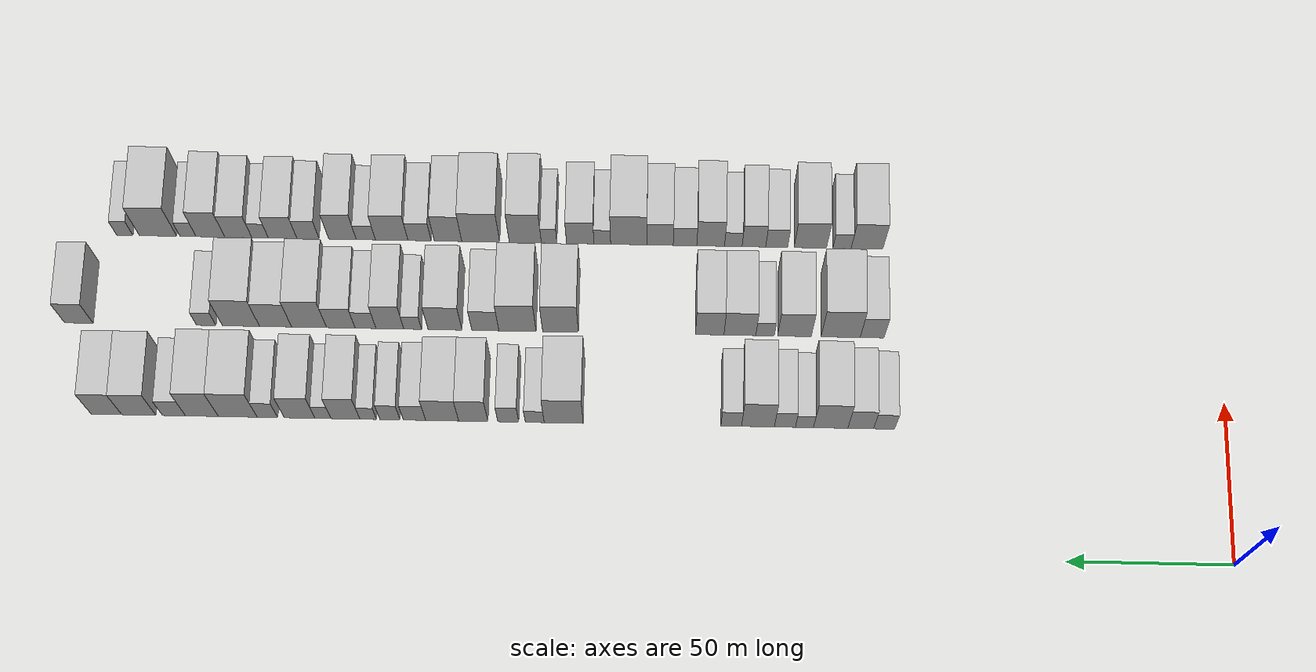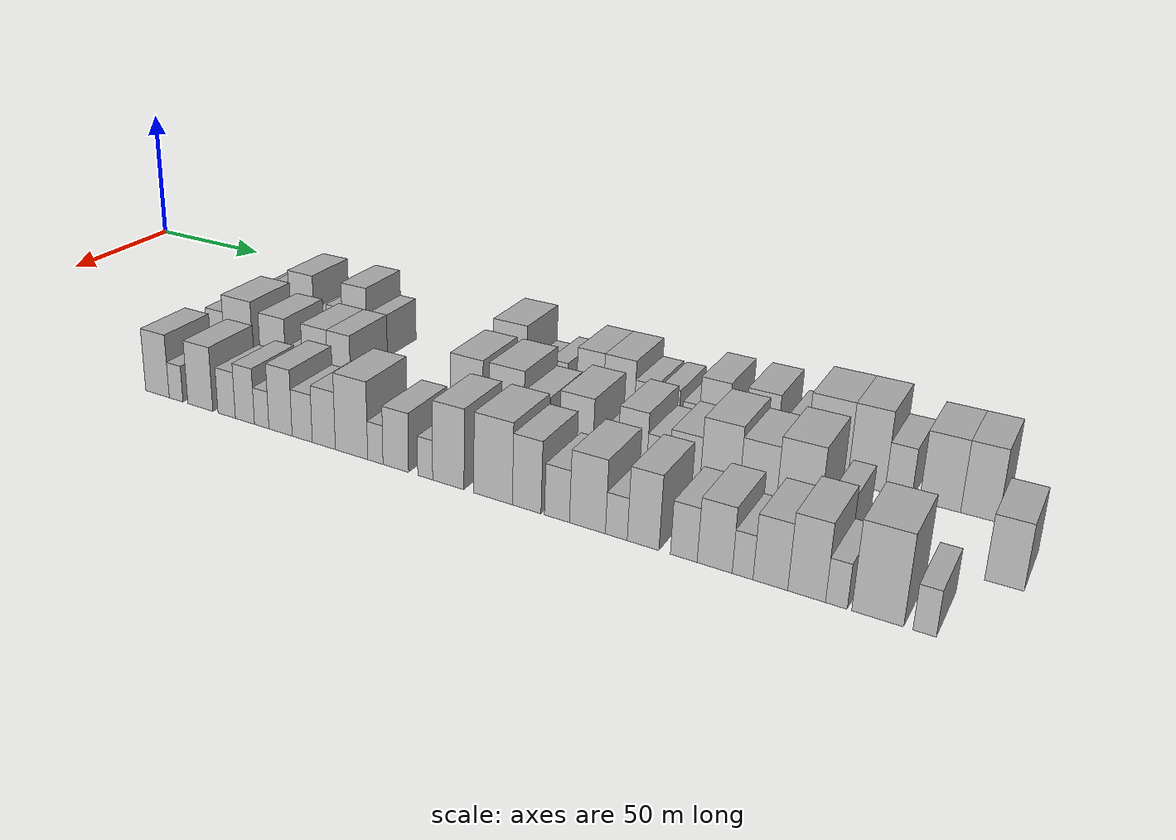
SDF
<sdf version="1.6">
 <world name="default">
  <model name="building_43">
   <static>1</static>
   <pose>50.0000 103.7568 0 0.000000 0.000000 0.000000</pose>
   <link name="link">
    <pose>0 0 7.50 0 0 0</pose>
    <collision name="collision"><geometry><box><size>20.0000 6.3906 15.0000</size></box></geometry></collision>
    <visual name="visual">
     <cast_shadows>0</cast_shadows>
     <geometry><box><size>20.0000 6.3906 15.0000</size></box></geometry>
     <material>
      <script>
       <uri>model://HANNAS_wall/materials/scripts</uri>
       <uri>model://HANNAS_wall/materials/textures</uri>
       <name>vrc/HANNAS_wall</name>
      </script>
     </material>
    </visual>
   </link>
  </model>
  <model name="building_44">
   <static>1</static>
   <pose>50.0000 110.8456 0 0.000000 0.000000 0.000000</pose>
   <link name="link">
    <pose>0 0 9.00 0 0 0</pose>
    <collision name="collision"><geometry><box><size>20.0000 7.7872 18.0000</size></box></geometry></collision>
    <visual name="visual">
     <cast_shadows>0</cast_shadows>
     <geometry><box><size>20.0000 7.7872 18.0000</size></box></geometry>
     <material>
      <script>
       <uri>model://HANNAS_wall/materials/scripts</uri>
       <uri>model://HANNAS_wall/materials/textures</uri>
       <name>vrc/HANNAS_wall</name>
      </script>
     </material>
    </visual>
   </link>
  </model>
  <model name="building_45">
   <static>1</static>
   <pose>50.0000 119.9501 0 0.000000 0.000000 0.000000</pose>
   <link name="link">
    <pose>0 0 12.00 0 0 0</pose>
    <collision name="collision"><geometry><box><size>20.0000 10.4216 24.0000</size></box></geometry></collision>
    <visual name="visual">
     <cast_shadows>0</cast_shadows>
     <geometry><box><size>20.0000 10.4216 24.0000</size></box></geometry>
     <material>
      <script>
       <uri>model://HANNAS_wall/materials/scripts</uri>
       <uri>model://HANNAS_wall/materials/textures</uri>
       <name>vrc/HANNAS_wall</name>
      </script>
     </material>
    </visual>
   </link>
  </model>
  <model name="building_46">
   <static>1</static>
   <pose>50.0000 127.8922 0 0.000000 0.000000 0.000000</pose>
   <link name="link">
    <pose>0 0 6.00 0 0 0</pose>
    <collision name="collision"><geometry><box><size>20.0000 5.4625 12.0000</size></box></geometry></collision>
    <visual name="visual">
     <cast_shadows>0</cast_shadows>
     <geometry><box><size>20.0000 5.4625 12.0000</size></box></geometry>
     <material>
      <script>
       <uri>model://HANNAS_wall/materials/scripts</uri>
       <uri>model://HANNAS_wall/materials/textures</uri>
       <name>vrc/HANNAS_wall</name>
      </script>
     </material>
    </visual>
   </link>
  </model>
  <model name="building_47">
   <static>1</static>
   <pose>50.0000 133.8123 0 0.000000 0.000000 0.000000</pose>
   <link name="link">
    <pose>0 0 7.50 0 0 0</pose>
    <collision name="collision"><geometry><box><size>20.0000 6.3777 15.0000</size></box></geometry></collision>
    <visual name="visual">
     <cast_shadows>0</cast_shadows>
     <geometry><box><size>20.0000 6.3777 15.0000</size></box></geometry>
     <material>
      <script>
       <uri>model://HANNAS_wall/materials/scripts</uri>
       <uri>model://HANNAS_wall/materials/textures</uri>
       <name>vrc/HANNAS_wall</name>
      </script>
     </material>
    </visual>
   </link>
  </model>
  <model name="building_48">
   <static>1</static>
   <pose>50.0000 141.9819 0 0.000000 0.000000 0.000000</pose>
   <link name="link">
    <pose>0 0 12.00 0 0 0</pose>
    <collision name="collision"><geometry><box><size>20.0000 9.9615 24.0000</size></box></geometry></collision>
    <visual name="visual">
     <cast_shadows>0</cast_shadows>
     <geometry><box><size>20.0000 9.9615 24.0000</size></box></geometry>
     <material>
      <script>
       <uri>model://HANNAS_wall/materials/scripts</uri>
       <uri>model://HANNAS_wall/materials/textures</uri>
       <name>vrc/HANNAS_wall</name>
      </script>
     </material>
    </visual>
   </link>
  </model>
  <model name="building_49">
   <static>1</static>
   <pose>50.0000 150.0803 0 0.000000 0.000000 0.000000</pose>
   <link name="link">
    <pose>0 0 7.50 0 0 0</pose>
    <collision name="collision"><geometry><box><size>20.0000 6.2354 15.0000</size></box></geometry></collision>
    <visual name="visual">
     <cast_shadows>0</cast_shadows>
     <geometry><box><size>20.0000 6.2354 15.0000</size></box></geometry>
     <material>
      <script>
       <uri>model://HANNAS_wall/materials/scripts</uri>
       <uri>model://HANNAS_wall/materials/textures</uri>
       <name>vrc/HANNAS_wall</name>
      </script>
     </material>
    </visual>
   </link>
  </model>
  <model name="building_50">
   <static>1</static>
   <pose>50.0000 200.9176 0 0.000000 0.000000 0.000000</pose>
   <link name="link">
    <pose>0 0 12.00 0 0 0</pose>
    <collision name="collision"><geometry><box><size>20.0000 11.8130 24.0000</size></box></geometry></collision>
    <visual name="visual">
     <cast_shadows>0</cast_shadows>
     <geometry><box><size>20.0000 11.8130 24.0000</size></box></geometry>
     <material>
      <script>
       <uri>model://HANNAS_wall/materials/scripts</uri>
       <uri>model://HANNAS_wall/materials/textures</uri>
       <name>vrc/HANNAS_wall</name>
      </script>
     </material>
    </visual>
   </link>
  </model>
  <model name="building_51">
   <static>1</static>
   <pose>50.0000 209.6882 0 0.000000 0.000000 0.000000</pose>
   <link name="link">
    <pose>0 0 6.00 0 0 0</pose>
    <collision name="collision"><geometry><box><size>20.0000 5.7282 12.0000</size></box></geometry></collision>
    <visual name="visual">
     <cast_shadows>0</cast_shadows>
     <geometry><box><size>20.0000 5.7282 12.0000</size></box></geometry>
     <material>
      <script>
       <uri>model://HANNAS_wall/materials/scripts</uri>
       <uri>model://HANNAS_wall/materials/textures</uri>
       <name>vrc/HANNAS_wall</name>
      </script>
     </material>
    </visual>
   </link>
  </model>
  <model name="building_52">
   <static>1</static>
   <pose>50.0000 217.7186 0 0.000000 0.000000 0.000000</pose>
   <link name="link">
    <pose>0 0 7.50 0 0 0</pose>
    <collision name="collision"><geometry><box><size>20.0000 6.3327 15.0000</size></box></geometry></collision>
    <visual name="visual">
     <cast_shadows>0</cast_shadows>
     <geometry><box><size>20.0000 6.3327 15.0000</size></box></geometry>
     <material>
      <script>
       <uri>model://HANNAS_wall/materials/scripts</uri>
       <uri>model://HANNAS_wall/materials/textures</uri>
       <name>vrc/HANNAS_wall</name>
      </script>
     </material>
    </visual>
   </link>
  </model>
  <model name="building_53">
   <static>1</static>
   <pose>50.0000 228.3293 0 0.000000 0.000000 0.000000</pose>
   <link name="link">
    <pose>0 0 10.50 0 0 0</pose>
    <collision name="collision"><geometry><box><size>20.0000 8.8886 21.0000</size></box></geometry></collision>
    <visual name="visual">
     <cast_shadows>0</cast_shadows>
     <geometry><box><size>20.0000 8.8886 21.0000</size></box></geometry>
     <material>
      <script>
       <uri>model://HANNAS_wall/materials/scripts</uri>
       <uri>model://HANNAS_wall/materials/textures</uri>
       <name>vrc/HANNAS_wall</name>
      </script>
     </material>
    </visual>
   </link>
  </model>
  <model name="building_54">
   <static>1</static>
   <pose>50.0000 237.7962 0 0.000000 0.000000 0.000000</pose>
   <link name="link">
    <pose>0 0 10.50 0 0 0</pose>
    <collision name="collision"><geometry><box><size>20.0000 10.0452 21.0000</size></box></geometry></collision>
    <visual name="visual">
     <cast_shadows>0</cast_shadows>
     <geometry><box><size>20.0000 10.0452 21.0000</size></box></geometry>
     <material>
      <script>
       <uri>model://HANNAS_wall/materials/scripts</uri>
       <uri>model://HANNAS_wall/materials/textures</uri>
       <name>vrc/HANNAS_wall</name>
      </script>
     </material>
    </visual>
   </link>
  </model>
  <model name="building_55">
   <static>1</static>
   <pose>50.0000 246.1873 0 0.000000 0.000000 0.000000</pose>
   <link name="link">
    <pose>0 0 7.50 0 0 0</pose>
    <collision name="collision"><geometry><box><size>20.0000 6.7370 15.0000</size></box></geometry></collision>
    <visual name="visual">
     <cast_shadows>0</cast_shadows>
     <geometry><box><size>20.0000 6.7370 15.0000</size></box></geometry>
     <material>
      <script>
       <uri>model://HANNAS_wall/materials/scripts</uri>
       <uri>model://HANNAS_wall/materials/textures</uri>
       <name>vrc/HANNAS_wall</name>
      </script>
     </material>
    </visual>
   </link>
  </model>
  <model name="building_56">
   <static>1</static>
   <pose>50.0000 253.6301 0 0.000000 0.000000 0.000000</pose>
   <link name="link">
    <pose>0 0 7.50 0 0 0</pose>
    <collision name="collision"><geometry><box><size>20.0000 6.1486 15.0000</size></box></geometry></collision>
    <visual name="visual">
     <cast_shadows>0</cast_shadows>
     <geometry><box><size>20.0000 6.1486 15.0000</size></box></geometry>
     <material>
      <script>
       <uri>model://HANNAS_wall/materials/scripts</uri>
       <uri>model://HANNAS_wall/materials/textures</uri>
       <name>vrc/HANNAS_wall</name>
      </script>
     </material>
    </visual>
   </link>
  </model>
  <model name="building_57">
   <static>1</static>
   <pose>50.0000 260.2373 0 0.000000 0.000000 0.000000</pose>
   <link name="link">
    <pose>0 0 6.00 0 0 0</pose>
    <collision name="collision"><geometry><box><size>20.0000 5.0658 12.0000</size></box></geometry></collision>
    <visual name="visual">
     <cast_shadows>0</cast_shadows>
     <geometry><box><size>20.0000 5.0658 12.0000</size></box></geometry>
     <material>
      <script>
       <uri>model://HANNAS_wall/materials/scripts</uri>
       <uri>model://HANNAS_wall/materials/textures</uri>
       <name>vrc/HANNAS_wall</name>
      </script>
     </material>
    </visual>
   </link>
  </model>
  <model name="building_58">
   <static>1</static>
   <pose>50.0000 267.1651 0 0.000000 0.000000 0.000000</pose>
   <link name="link">
    <pose>0 0 10.50 0 0 0</pose>
    <collision name="collision"><geometry><box><size>20.0000 8.7898 21.0000</size></box></geometry></collision>
    <visual name="visual">
     <cast_shadows>0</cast_shadows>
     <geometry><box><size>20.0000 8.7898 21.0000</size></box></geometry>
     <material>
      <script>
       <uri>model://HANNAS_wall/materials/scripts</uri>
       <uri>model://HANNAS_wall/materials/textures</uri>
       <name>vrc/HANNAS_wall</name>
      </script>
     </material>
    </visual>
   </link>
  </model>
  <model name="building_59">
   <static>1</static>
   <pose>50.0000 273.9715 0 0.000000 0.000000 0.000000</pose>
   <link name="link">
    <pose>0 0 6.00 0 0 0</pose>
    <collision name="collision"><geometry><box><size>20.0000 4.8229 12.0000</size></box></geometry></collision>
    <visual name="visual">
     <cast_shadows>0</cast_shadows>
     <geometry><box><size>20.0000 4.8229 12.0000</size></box></geometry>
     <material>
      <script>
       <uri>model://HANNAS_wall/materials/scripts</uri>
       <uri>model://HANNAS_wall/materials/textures</uri>
       <name>vrc/HANNAS_wall</name>
      </script>
     </material>
    </visual>
   </link>
  </model>
  <model name="building_60">
   <static>1</static>
   <pose>50.0000 281.0614 0 0.000000 0.000000 0.000000</pose>
   <link name="link">
    <pose>0 0 10.50 0 0 0</pose>
    <collision name="collision"><geometry><box><size>20.0000 9.3570 21.0000</size></box></geometry></collision>
    <visual name="visual">
     <cast_shadows>0</cast_shadows>
     <geometry><box><size>20.0000 9.3570 21.0000</size></box></geometry>
     <material>
      <script>
       <uri>model://HANNAS_wall/materials/scripts</uri>
       <uri>model://HANNAS_wall/materials/textures</uri>
       <name>vrc/HANNAS_wall</name>
      </script>
     </material>
    </visual>
   </link>
  </model>
  <model name="building_61">
   <static>1</static>
   <pose>50.0000 290.8681 0 0.000000 0.000000 0.000000</pose>
   <link name="link">
    <pose>0 0 7.50 0 0 0</pose>
    <collision name="collision"><geometry><box><size>20.0000 6.2563 15.0000</size></box></geometry></collision>
    <visual name="visual">
     <cast_shadows>0</cast_shadows>
     <geometry><box><size>20.0000 6.2563 15.0000</size></box></geometry>
     <material>
      <script>
       <uri>model://HANNAS_wall/materials/scripts</uri>
       <uri>model://HANNAS_wall/materials/textures</uri>
       <name>vrc/HANNAS_wall</name>
      </script>
     </material>
    </visual>
   </link>
  </model>
  <model name="building_62">
   <static>1</static>
   <pose>50.0000 299.8954 0 0.000000 0.000000 0.000000</pose>
   <link name="link">
    <pose>0 0 12.00 0 0 0</pose>
    <collision name="collision"><geometry><box><size>20.0000 11.7983 24.0000</size></box></geometry></collision>
    <visual name="visual">
     <cast_shadows>0</cast_shadows>
     <geometry><box><size>20.0000 11.7983 24.0000</size></box></geometry>
     <material>
      <script>
       <uri>model://HANNAS_wall/materials/scripts</uri>
       <uri>model://HANNAS_wall/materials/textures</uri>
       <name>vrc/HANNAS_wall</name>
      </script>
     </material>
    </visual>
   </link>
  </model>
  <model name="building_63">
   <static>1</static>
   <pose>50.0000 310.7911 0 0.000000 0.000000 0.000000</pose>
   <link name="link">
    <pose>0 0 12.00 0 0 0</pose>
    <collision name="collision"><geometry><box><size>20.0000 9.9930 24.0000</size></box></geometry></collision>
    <visual name="visual">
     <cast_shadows>0</cast_shadows>
     <geometry><box><size>20.0000 9.9930 24.0000</size></box></geometry>
     <material>
      <script>
       <uri>model://HANNAS_wall/materials/scripts</uri>
       <uri>model://HANNAS_wall/materials/textures</uri>
       <name>vrc/HANNAS_wall</name>
      </script>
     </material>
    </visual>
   </link>
  </model>
  <model name="building_64">
   <static>1</static>
   <pose>50.0000 319.2852 0 0.000000 0.000000 0.000000</pose>
   <link name="link">
    <pose>0 0 7.50 0 0 0</pose>
    <collision name="collision"><geometry><box><size>20.0000 6.9953 15.0000</size></box></geometry></collision>
    <visual name="visual">
     <cast_shadows>0</cast_shadows>
     <geometry><box><size>20.0000 6.9953 15.0000</size></box></geometry>
     <material>
      <script>
       <uri>model://HANNAS_wall/materials/scripts</uri>
       <uri>model://HANNAS_wall/materials/textures</uri>
       <name>vrc/HANNAS_wall</name>
      </script>
     </material>
    </visual>
   </link>
  </model>
  <model name="building_65">
   <static>1</static>
   <pose>50.0000 329.9708 0 0.000000 0.000000 0.000000</pose>
   <link name="link">
    <pose>0 0 10.50 0 0 0</pose>
    <collision name="collision"><geometry><box><size>20.0000 10.3757 21.0000</size></box></geometry></collision>
    <visual name="visual">
     <cast_shadows>0</cast_shadows>
     <geometry><box><size>20.0000 10.3757 21.0000</size></box></geometry>
     <material>
      <script>
       <uri>model://HANNAS_wall/materials/scripts</uri>
       <uri>model://HANNAS_wall/materials/textures</uri>
       <name>vrc/HANNAS_wall</name>
      </script>
     </material>
    </visual>
   </link>
  </model>
  <model name="building_66">
   <static>1</static>
   <pose>50.0000 339.8101 0 0.000000 0.000000 0.000000</pose>
   <link name="link">
    <pose>0 0 10.50 0 0 0</pose>
    <collision name="collision"><geometry><box><size>20.0000 9.3029 21.0000</size></box></geometry></collision>
    <visual name="visual">
     <cast_shadows>0</cast_shadows>
     <geometry><box><size>20.0000 9.3029 21.0000</size></box></geometry>
     <material>
      <script>
       <uri>model://HANNAS_wall/materials/scripts</uri>
       <uri>model://HANNAS_wall/materials/textures</uri>
       <name>vrc/HANNAS_wall</name>
      </script>
     </material>
    </visual>
   </link>
  </model>
  <model name="building_116">
   <static>1</static>
   <pose>79.0000 107.0657 0 0.000000 0.000000 0.000000</pose>
   <link name="link">
    <pose>0 0 9.00 0 0 0</pose>
    <collision name="collision"><geometry><box><size>20.0000 7.3042 18.0000</size></box></geometry></collision>
    <visual name="visual">
     <cast_shadows>0</cast_shadows>
     <geometry><box><size>20.0000 7.3042 18.0000</size></box></geometry>
     <material>
      <script>
       <uri>model://HANNAS_wall/materials/scripts</uri>
       <uri>model://HANNAS_wall/materials/textures</uri>
       <name>vrc/HANNAS_wall</name>
      </script>
     </material>
    </visual>
   </link>
  </model>
  <model name="building_117">
   <static>1</static>
   <pose>79.0000 116.7170 0 0.000000 0.000000 0.000000</pose>
   <link name="link">
    <pose>0 0 12.00 0 0 0</pose>
    <collision name="collision"><geometry><box><size>20.0000 11.9986 24.0000</size></box></geometry></collision>
    <visual name="visual">
     <cast_shadows>0</cast_shadows>
     <geometry><box><size>20.0000 11.9986 24.0000</size></box></geometry>
     <material>
      <script>
       <uri>model://HANNAS_wall/materials/scripts</uri>
       <uri>model://HANNAS_wall/materials/textures</uri>
       <name>vrc/HANNAS_wall</name>
      </script>
     </material>
    </visual>
   </link>
  </model>
  <model name="building_118">
   <static>1</static>
   <pose>79.0000 130.8873 0 0.000000 0.000000 0.000000</pose>
   <link name="link">
    <pose>0 0 10.50 0 0 0</pose>
    <collision name="collision"><geometry><box><size>20.0000 10.3419 21.0000</size></box></geometry></collision>
    <visual name="visual">
     <cast_shadows>0</cast_shadows>
     <geometry><box><size>20.0000 10.3419 21.0000</size></box></geometry>
     <material>
      <script>
       <uri>model://HANNAS_wall/materials/scripts</uri>
       <uri>model://HANNAS_wall/materials/textures</uri>
       <name>vrc/HANNAS_wall</name>
      </script>
     </material>
    </visual>
   </link>
  </model>
  <model name="building_119">
   <static>1</static>
   <pose>79.0000 139.8989 0 0.000000 0.000000 0.000000</pose>
   <link name="link">
    <pose>0 0 6.00 0 0 0</pose>
    <collision name="collision"><geometry><box><size>20.0000 5.6813 12.0000</size></box></geometry></collision>
    <visual name="visual">
     <cast_shadows>0</cast_shadows>
     <geometry><box><size>20.0000 5.6813 12.0000</size></box></geometry>
     <material>
      <script>
       <uri>model://HANNAS_wall/materials/scripts</uri>
       <uri>model://HANNAS_wall/materials/textures</uri>
       <name>vrc/HANNAS_wall</name>
      </script>
     </material>
    </visual>
   </link>
  </model>
  <model name="building_120">
   <static>1</static>
   <pose>79.0000 147.6278 0 0.000000 0.000000 0.000000</pose>
   <link name="link">
    <pose>0 0 10.50 0 0 0</pose>
    <collision name="collision"><geometry><box><size>20.0000 9.7765 21.0000</size></box></geometry></collision>
    <visual name="visual">
     <cast_shadows>0</cast_shadows>
     <geometry><box><size>20.0000 9.7765 21.0000</size></box></geometry>
     <material>
      <script>
       <uri>model://HANNAS_wall/materials/scripts</uri>
       <uri>model://HANNAS_wall/materials/textures</uri>
       <name>vrc/HANNAS_wall</name>
      </script>
     </material>
    </visual>
   </link>
  </model>
  <model name="building_121">
   <static>1</static>
   <pose>79.0000 156.9021 0 0.000000 0.000000 0.000000</pose>
   <link name="link">
    <pose>0 0 10.50 0 0 0</pose>
    <collision name="collision"><geometry><box><size>20.0000 8.7720 21.0000</size></box></geometry></collision>
    <visual name="visual">
     <cast_shadows>0</cast_shadows>
     <geometry><box><size>20.0000 8.7720 21.0000</size></box></geometry>
     <material>
      <script>
       <uri>model://HANNAS_wall/materials/scripts</uri>
       <uri>model://HANNAS_wall/materials/textures</uri>
       <name>vrc/HANNAS_wall</name>
      </script>
     </material>
    </visual>
   </link>
  </model>
  <model name="building_122">
   <static>1</static>
   <pose>79.0000 202.7490 0 0.000000 0.000000 0.000000</pose>
   <link name="link">
    <pose>0 0 12.00 0 0 0</pose>
    <collision name="collision"><geometry><box><size>20.0000 10.9740 24.0000</size></box></geometry></collision>
    <visual name="visual">
     <cast_shadows>0</cast_shadows>
     <geometry><box><size>20.0000 10.9740 24.0000</size></box></geometry>
     <material>
      <script>
       <uri>model://HANNAS_wall/materials/scripts</uri>
       <uri>model://HANNAS_wall/materials/textures</uri>
       <name>vrc/HANNAS_wall</name>
      </script>
     </material>
    </visual>
   </link>
  </model>
  <model name="building_123">
   <static>1</static>
   <pose>79.0000 215.9618 0 0.000000 0.000000 0.000000</pose>
   <link name="link">
    <pose>0 0 12.00 0 0 0</pose>
    <collision name="collision"><geometry><box><size>20.0000 11.4517 24.0000</size></box></geometry></collision>
    <visual name="visual">
     <cast_shadows>0</cast_shadows>
     <geometry><box><size>20.0000 11.4517 24.0000</size></box></geometry>
     <material>
      <script>
       <uri>model://HANNAS_wall/materials/scripts</uri>
       <uri>model://HANNAS_wall/materials/textures</uri>
       <name>vrc/HANNAS_wall</name>
      </script>
     </material>
    </visual>
   </link>
  </model>
  <model name="building_124">
   <static>1</static>
   <pose>79.0000 225.8504 0 0.000000 0.000000 0.000000</pose>
   <link name="link">
    <pose>0 0 9.00 0 0 0</pose>
    <collision name="collision"><geometry><box><size>20.0000 8.3255 18.0000</size></box></geometry></collision>
    <visual name="visual">
     <cast_shadows>0</cast_shadows>
     <geometry><box><size>20.0000 8.3255 18.0000</size></box></geometry>
     <material>
      <script>
       <uri>model://HANNAS_wall/materials/scripts</uri>
       <uri>model://HANNAS_wall/materials/textures</uri>
       <name>vrc/HANNAS_wall</name>
      </script>
     </material>
    </visual>
   </link>
  </model>
  <model name="building_125">
   <static>1</static>
   <pose>79.0000 238.2356 0 0.000000 0.000000 0.000000</pose>
   <link name="link">
    <pose>0 0 10.50 0 0 0</pose>
    <collision name="collision"><geometry><box><size>20.0000 10.4449 21.0000</size></box></geometry></collision>
    <visual name="visual">
     <cast_shadows>0</cast_shadows>
     <geometry><box><size>20.0000 10.4449 21.0000</size></box></geometry>
     <material>
      <script>
       <uri>model://HANNAS_wall/materials/scripts</uri>
       <uri>model://HANNAS_wall/materials/textures</uri>
       <name>vrc/HANNAS_wall</name>
      </script>
     </material>
    </visual>
   </link>
  </model>
  <model name="building_126">
   <static>1</static>
   <pose>79.0000 248.1817 0 0.000000 0.000000 0.000000</pose>
   <link name="link">
    <pose>0 0 6.00 0 0 0</pose>
    <collision name="collision"><geometry><box><size>20.0000 5.4472 12.0000</size></box></geometry></collision>
    <visual name="visual">
     <cast_shadows>0</cast_shadows>
     <geometry><box><size>20.0000 5.4472 12.0000</size></box></geometry>
     <material>
      <script>
       <uri>model://HANNAS_wall/materials/scripts</uri>
       <uri>model://HANNAS_wall/materials/textures</uri>
       <name>vrc/HANNAS_wall</name>
      </script>
     </material>
    </visual>
   </link>
  </model>
  <model name="building_127">
   <static>1</static>
   <pose>79.0000 255.1969 0 0.000000 0.000000 0.000000</pose>
   <link name="link">
    <pose>0 0 10.50 0 0 0</pose>
    <collision name="collision"><geometry><box><size>20.0000 8.5832 21.0000</size></box></geometry></collision>
    <visual name="visual">
     <cast_shadows>0</cast_shadows>
     <geometry><box><size>20.0000 8.5832 21.0000</size></box></geometry>
     <material>
      <script>
       <uri>model://HANNAS_wall/materials/scripts</uri>
       <uri>model://HANNAS_wall/materials/textures</uri>
       <name>vrc/HANNAS_wall</name>
      </script>
     </material>
    </visual>
   </link>
  </model>
  <model name="building_128">
   <static>1</static>
   <pose>79.0000 262.6918 0 0.000000 0.000000 0.000000</pose>
   <link name="link">
    <pose>0 0 7.50 0 0 0</pose>
    <collision name="collision"><geometry><box><size>20.0000 6.4067 15.0000</size></box></geometry></collision>
    <visual name="visual">
     <cast_shadows>0</cast_shadows>
     <geometry><box><size>20.0000 6.4067 15.0000</size></box></geometry>
     <material>
      <script>
       <uri>model://HANNAS_wall/materials/scripts</uri>
       <uri>model://HANNAS_wall/materials/textures</uri>
       <name>vrc/HANNAS_wall</name>
      </script>
     </material>
    </visual>
   </link>
  </model>
  <model name="building_129">
   <static>1</static>
   <pose>79.0000 270.2952 0 0.000000 0.000000 0.000000</pose>
   <link name="link">
    <pose>0 0 9.00 0 0 0</pose>
    <collision name="collision"><geometry><box><size>20.0000 8.8000 18.0000</size></box></geometry></collision>
    <visual name="visual">
     <cast_shadows>0</cast_shadows>
     <geometry><box><size>20.0000 8.8000 18.0000</size></box></geometry>
     <material>
      <script>
       <uri>model://HANNAS_wall/materials/scripts</uri>
       <uri>model://HANNAS_wall/materials/textures</uri>
       <name>vrc/HANNAS_wall</name>
      </script>
     </material>
    </visual>
   </link>
  </model>
  <model name="building_130">
   <static>1</static>
   <pose>79.0000 280.0711 0 0.000000 0.000000 0.000000</pose>
   <link name="link">
    <pose>0 0 12.00 0 0 0</pose>
    <collision name="collision"><geometry><box><size>20.0000 10.7518 24.0000</size></box></geometry></collision>
    <visual name="visual">
     <cast_shadows>0</cast_shadows>
     <geometry><box><size>20.0000 10.7518 24.0000</size></box></geometry>
     <material>
      <script>
       <uri>model://HANNAS_wall/materials/scripts</uri>
       <uri>model://HANNAS_wall/materials/textures</uri>
       <name>vrc/HANNAS_wall</name>
      </script>
     </material>
    </visual>
   </link>
  </model>
  <model name="building_131">
   <static>1</static>
   <pose>79.0000 290.3859 0 0.000000 0.000000 0.000000</pose>
   <link name="link">
    <pose>0 0 10.50 0 0 0</pose>
    <collision name="collision"><geometry><box><size>20.0000 9.8777 21.0000</size></box></geometry></collision>
    <visual name="visual">
     <cast_shadows>0</cast_shadows>
     <geometry><box><size>20.0000 9.8777 21.0000</size></box></geometry>
     <material>
      <script>
       <uri>model://HANNAS_wall/materials/scripts</uri>
       <uri>model://HANNAS_wall/materials/textures</uri>
       <name>vrc/HANNAS_wall</name>
      </script>
     </material>
    </visual>
   </link>
  </model>
  <model name="building_132">
   <static>1</static>
   <pose>79.0000 301.0289 0 0.000000 0.000000 0.000000</pose>
   <link name="link">
    <pose>0 0 12.00 0 0 0</pose>
    <collision name="collision"><geometry><box><size>20.0000 11.4082 24.0000</size></box></geometry></collision>
    <visual name="visual">
     <cast_shadows>0</cast_shadows>
     <geometry><box><size>20.0000 11.4082 24.0000</size></box></geometry>
     <material>
      <script>
       <uri>model://HANNAS_wall/materials/scripts</uri>
       <uri>model://HANNAS_wall/materials/textures</uri>
       <name>vrc/HANNAS_wall</name>
      </script>
     </material>
    </visual>
   </link>
  </model>
  <model name="building_133">
   <static>1</static>
   <pose>79.0000 311.7250 0 0.000000 0.000000 0.000000</pose>
   <link name="link">
    <pose>0 0 6.00 0 0 0</pose>
    <collision name="collision"><geometry><box><size>20.0000 5.9841 12.0000</size></box></geometry></collision>
    <visual name="visual">
     <cast_shadows>0</cast_shadows>
     <geometry><box><size>20.0000 5.9841 12.0000</size></box></geometry>
     <material>
      <script>
       <uri>model://HANNAS_wall/materials/scripts</uri>
       <uri>model://HANNAS_wall/materials/textures</uri>
       <name>vrc/HANNAS_wall</name>
      </script>
     </material>
    </visual>
   </link>
  </model>
  <model name="building_134">
   <static>1</static>
   <pose>79.0000 350.9681 0 0.000000 0.000000 0.000000</pose>
   <link name="link">
    <pose>0 0 9.00 0 0 0</pose>
    <collision name="collision"><geometry><box><size>20.0000 8.8340 18.0000</size></box></geometry></collision>
    <visual name="visual">
     <cast_shadows>0</cast_shadows>
     <geometry><box><size>20.0000 8.8340 18.0000</size></box></geometry>
     <material>
      <script>
       <uri>model://HANNAS_wall/materials/scripts</uri>
       <uri>model://HANNAS_wall/materials/textures</uri>
       <name>vrc/HANNAS_wall</name>
      </script>
     </material>
    </visual>
   </link>
  </model>
  <model name="building_184">
   <static>1</static>
   <pose>108.0000 108.2982 0 0.000000 0.000000 0.000000</pose>
   <link name="link">
    <pose>0 0 10.50 0 0 0</pose>
    <collision name="collision"><geometry><box><size>20.0000 9.8473 21.0000</size></box></geometry></collision>
    <visual name="visual">
     <cast_shadows>0</cast_shadows>
     <geometry><box><size>20.0000 9.8473 21.0000</size></box></geometry>
     <material>
      <script>
       <uri>model://HANNAS_wall/materials/scripts</uri>
       <uri>model://HANNAS_wall/materials/textures</uri>
       <name>vrc/HANNAS_wall</name>
      </script>
     </material>
    </visual>
   </link>
  </model>
  <model name="building_185">
   <static>1</static>
   <pose>108.0000 116.0474 0 0.000000 0.000000 0.000000</pose>
   <link name="link">
    <pose>0 0 6.00 0 0 0</pose>
    <collision name="collision"><geometry><box><size>20.0000 5.6511 12.0000</size></box></geometry></collision>
    <visual name="visual">
     <cast_shadows>0</cast_shadows>
     <geometry><box><size>20.0000 5.6511 12.0000</size></box></geometry>
     <material>
      <script>
       <uri>model://HANNAS_wall/materials/scripts</uri>
       <uri>model://HANNAS_wall/materials/textures</uri>
       <name>vrc/HANNAS_wall</name>
      </script>
     </material>
    </visual>
   </link>
  </model>
  <model name="building_186">
   <static>1</static>
   <pose>108.0000 125.9171 0 0.000000 0.000000 0.000000</pose>
   <link name="link">
    <pose>0 0 10.50 0 0 0</pose>
    <collision name="collision"><geometry><box><size>20.0000 10.0884 21.0000</size></box></geometry></collision>
    <visual name="visual">
     <cast_shadows>0</cast_shadows>
     <geometry><box><size>20.0000 10.0884 21.0000</size></box></geometry>
     <material>
      <script>
       <uri>model://HANNAS_wall/materials/scripts</uri>
       <uri>model://HANNAS_wall/materials/textures</uri>
       <name>vrc/HANNAS_wall</name>
      </script>
     </material>
    </visual>
   </link>
  </model>
  <model name="building_187">
   <static>1</static>
   <pose>108.0000 136.3754 0 0.000000 0.000000 0.000000</pose>
   <link name="link">
    <pose>0 0 7.50 0 0 0</pose>
    <collision name="collision"><geometry><box><size>20.0000 6.8282 15.0000</size></box></geometry></collision>
    <visual name="visual">
     <cast_shadows>0</cast_shadows>
     <geometry><box><size>20.0000 6.8282 15.0000</size></box></geometry>
     <material>
      <script>
       <uri>model://HANNAS_wall/materials/scripts</uri>
       <uri>model://HANNAS_wall/materials/textures</uri>
       <name>vrc/HANNAS_wall</name>
      </script>
     </material>
    </visual>
   </link>
  </model>
  <model name="building_188">
   <static>1</static>
   <pose>108.0000 143.4605 0 0.000000 0.000000 0.000000</pose>
   <link name="link">
    <pose>0 0 9.00 0 0 0</pose>
    <collision name="collision"><geometry><box><size>20.0000 7.3420 18.0000</size></box></geometry></collision>
    <visual name="visual">
     <cast_shadows>0</cast_shadows>
     <geometry><box><size>20.0000 7.3420 18.0000</size></box></geometry>
     <material>
      <script>
       <uri>model://HANNAS_wall/materials/scripts</uri>
       <uri>model://HANNAS_wall/materials/textures</uri>
       <name>vrc/HANNAS_wall</name>
      </script>
     </material>
    </visual>
   </link>
  </model>
  <model name="building_189">
   <static>1</static>
   <pose>108.0000 149.8651 0 0.000000 0.000000 0.000000</pose>
   <link name="link">
    <pose>0 0 6.00 0 0 0</pose>
    <collision name="collision"><geometry><box><size>20.0000 5.4673 12.0000</size></box></geometry></collision>
    <visual name="visual">
     <cast_shadows>0</cast_shadows>
     <geometry><box><size>20.0000 5.4673 12.0000</size></box></geometry>
     <material>
      <script>
       <uri>model://HANNAS_wall/materials/scripts</uri>
       <uri>model://HANNAS_wall/materials/textures</uri>
       <name>vrc/HANNAS_wall</name>
      </script>
     </material>
    </visual>
   </link>
  </model>
  <model name="building_190">
   <static>1</static>
   <pose>108.0000 156.9193 0 0.000000 0.000000 0.000000</pose>
   <link name="link">
    <pose>0 0 10.50 0 0 0</pose>
    <collision name="collision"><geometry><box><size>20.0000 8.6410 21.0000</size></box></geometry></collision>
    <visual name="visual">
     <cast_shadows>0</cast_shadows>
     <geometry><box><size>20.0000 8.6410 21.0000</size></box></geometry>
     <material>
      <script>
       <uri>model://HANNAS_wall/materials/scripts</uri>
       <uri>model://HANNAS_wall/materials/textures</uri>
       <name>vrc/HANNAS_wall</name>
      </script>
     </material>
    </visual>
   </link>
  </model>
  <model name="building_191">
   <static>1</static>
   <pose>108.0000 164.9016 0 0.000000 0.000000 0.000000</pose>
   <link name="link">
    <pose>0 0 7.50 0 0 0</pose>
    <collision name="collision"><geometry><box><size>20.0000 7.3235 15.0000</size></box></geometry></collision>
    <visual name="visual">
     <cast_shadows>0</cast_shadows>
     <geometry><box><size>20.0000 7.3235 15.0000</size></box></geometry>
     <material>
      <script>
       <uri>model://HANNAS_wall/materials/scripts</uri>
       <uri>model://HANNAS_wall/materials/textures</uri>
       <name>vrc/HANNAS_wall</name>
      </script>
     </material>
    </visual>
   </link>
  </model>
  <model name="building_192">
   <static>1</static>
   <pose>108.0000 172.6764 0 0.000000 0.000000 0.000000</pose>
   <link name="link">
    <pose>0 0 9.00 0 0 0</pose>
    <collision name="collision"><geometry><box><size>20.0000 8.2261 18.0000</size></box></geometry></collision>
    <visual name="visual">
     <cast_shadows>0</cast_shadows>
     <geometry><box><size>20.0000 8.2261 18.0000</size></box></geometry>
     <material>
      <script>
       <uri>model://HANNAS_wall/materials/scripts</uri>
       <uri>model://HANNAS_wall/materials/textures</uri>
       <name>vrc/HANNAS_wall</name>
      </script>
     </material>
    </visual>
   </link>
  </model>
  <model name="building_193">
   <static>1</static>
   <pose>108.0000 182.4041 0 0.000000 0.000000 0.000000</pose>
   <link name="link">
    <pose>0 0 12.00 0 0 0</pose>
    <collision name="collision"><geometry><box><size>20.0000 11.2294 24.0000</size></box></geometry></collision>
    <visual name="visual">
     <cast_shadows>0</cast_shadows>
     <geometry><box><size>20.0000 11.2294 24.0000</size></box></geometry>
     <material>
      <script>
       <uri>model://HANNAS_wall/materials/scripts</uri>
       <uri>model://HANNAS_wall/materials/textures</uri>
       <name>vrc/HANNAS_wall</name>
      </script>
     </material>
    </visual>
   </link>
  </model>
  <model name="building_194">
   <static>1</static>
   <pose>108.0000 190.6174 0 0.000000 0.000000 0.000000</pose>
   <link name="link">
    <pose>0 0 6.00 0 0 0</pose>
    <collision name="collision"><geometry><box><size>20.0000 5.1972 12.0000</size></box></geometry></collision>
    <visual name="visual">
     <cast_shadows>0</cast_shadows>
     <geometry><box><size>20.0000 5.1972 12.0000</size></box></geometry>
     <material>
      <script>
       <uri>model://HANNAS_wall/materials/scripts</uri>
       <uri>model://HANNAS_wall/materials/textures</uri>
       <name>vrc/HANNAS_wall</name>
      </script>
     </material>
    </visual>
   </link>
  </model>
  <model name="building_195">
   <static>1</static>
   <pose>108.0000 197.4819 0 0.000000 0.000000 0.000000</pose>
   <link name="link">
    <pose>0 0 9.00 0 0 0</pose>
    <collision name="collision"><geometry><box><size>20.0000 8.5320 18.0000</size></box></geometry></collision>
    <visual name="visual">
     <cast_shadows>0</cast_shadows>
     <geometry><box><size>20.0000 8.5320 18.0000</size></box></geometry>
     <material>
      <script>
       <uri>model://HANNAS_wall/materials/scripts</uri>
       <uri>model://HANNAS_wall/materials/textures</uri>
       <name>vrc/HANNAS_wall</name>
      </script>
     </material>
    </visual>
   </link>
  </model>
  <model name="building_196">
   <static>1</static>
   <pose>108.0000 207.1658 0 0.000000 0.000000 0.000000</pose>
   <link name="link">
    <pose>0 0 6.00 0 0 0</pose>
    <collision name="collision"><geometry><box><size>20.0000 4.8358 12.0000</size></box></geometry></collision>
    <visual name="visual">
     <cast_shadows>0</cast_shadows>
     <geometry><box><size>20.0000 4.8358 12.0000</size></box></geometry>
     <material>
      <script>
       <uri>model://HANNAS_wall/materials/scripts</uri>
       <uri>model://HANNAS_wall/materials/textures</uri>
       <name>vrc/HANNAS_wall</name>
      </script>
     </material>
    </visual>
   </link>
  </model>
  <model name="building_197">
   <static>1</static>
   <pose>108.0000 214.5688 0 0.000000 0.000000 0.000000</pose>
   <link name="link">
    <pose>0 0 12.00 0 0 0</pose>
    <collision name="collision"><geometry><box><size>20.0000 9.9702 24.0000</size></box></geometry></collision>
    <visual name="visual">
     <cast_shadows>0</cast_shadows>
     <geometry><box><size>20.0000 9.9702 24.0000</size></box></geometry>
     <material>
      <script>
       <uri>model://HANNAS_wall/materials/scripts</uri>
       <uri>model://HANNAS_wall/materials/textures</uri>
       <name>vrc/HANNAS_wall</name>
      </script>
     </material>
    </visual>
   </link>
  </model>
  <model name="building_198">
   <static>1</static>
   <pose>108.0000 228.4556 0 0.000000 0.000000 0.000000</pose>
   <link name="link">
    <pose>0 0 12.00 0 0 0</pose>
    <collision name="collision"><geometry><box><size>20.0000 11.8033 24.0000</size></box></geometry></collision>
    <visual name="visual">
     <cast_shadows>0</cast_shadows>
     <geometry><box><size>20.0000 11.8033 24.0000</size></box></geometry>
     <material>
      <script>
       <uri>model://HANNAS_wall/materials/scripts</uri>
       <uri>model://HANNAS_wall/materials/textures</uri>
       <name>vrc/HANNAS_wall</name>
      </script>
     </material>
    </visual>
   </link>
  </model>
  <model name="building_199">
   <static>1</static>
   <pose>108.0000 238.6269 0 0.000000 0.000000 0.000000</pose>
   <link name="link">
    <pose>0 0 10.50 0 0 0</pose>
    <collision name="collision"><geometry><box><size>20.0000 8.5393 21.0000</size></box></geometry></collision>
    <visual name="visual">
     <cast_shadows>0</cast_shadows>
     <geometry><box><size>20.0000 8.5393 21.0000</size></box></geometry>
     <material>
      <script>
       <uri>model://HANNAS_wall/materials/scripts</uri>
       <uri>model://HANNAS_wall/materials/textures</uri>
       <name>vrc/HANNAS_wall</name>
      </script>
     </material>
    </visual>
   </link>
  </model>
  <model name="building_200">
   <static>1</static>
   <pose>108.0000 247.4996 0 0.000000 0.000000 0.000000</pose>
   <link name="link">
    <pose>0 0 7.50 0 0 0</pose>
    <collision name="collision"><geometry><box><size>20.0000 7.2062 15.0000</size></box></geometry></collision>
    <visual name="visual">
     <cast_shadows>0</cast_shadows>
     <geometry><box><size>20.0000 7.2062 15.0000</size></box></geometry>
     <material>
      <script>
       <uri>model://HANNAS_wall/materials/scripts</uri>
       <uri>model://HANNAS_wall/materials/textures</uri>
       <name>vrc/HANNAS_wall</name>
      </script>
     </material>
    </visual>
   </link>
  </model>
  <model name="building_201">
   <static>1</static>
   <pose>108.0000 256.1762 0 0.000000 0.000000 0.000000</pose>
   <link name="link">
    <pose>0 0 10.50 0 0 0</pose>
    <collision name="collision"><geometry><box><size>20.0000 10.1469 21.0000</size></box></geometry></collision>
    <visual name="visual">
     <cast_shadows>0</cast_shadows>
     <geometry><box><size>20.0000 10.1469 21.0000</size></box></geometry>
     <material>
      <script>
       <uri>model://HANNAS_wall/materials/scripts</uri>
       <uri>model://HANNAS_wall/materials/textures</uri>
       <name>vrc/HANNAS_wall</name>
      </script>
     </material>
    </visual>
   </link>
  </model>
  <model name="building_202">
   <static>1</static>
   <pose>108.0000 264.2455 0 0.000000 0.000000 0.000000</pose>
   <link name="link">
    <pose>0 0 6.00 0 0 0</pose>
    <collision name="collision"><geometry><box><size>20.0000 5.9918 12.0000</size></box></geometry></collision>
    <visual name="visual">
     <cast_shadows>0</cast_shadows>
     <geometry><box><size>20.0000 5.9918 12.0000</size></box></geometry>
     <material>
      <script>
       <uri>model://HANNAS_wall/materials/scripts</uri>
       <uri>model://HANNAS_wall/materials/textures</uri>
       <name>vrc/HANNAS_wall</name>
      </script>
     </material>
    </visual>
   </link>
  </model>
  <model name="building_203">
   <static>1</static>
   <pose>108.0000 271.5210 0 0.000000 0.000000 0.000000</pose>
   <link name="link">
    <pose>0 0 10.50 0 0 0</pose>
    <collision name="collision"><geometry><box><size>20.0000 8.5592 21.0000</size></box></geometry></collision>
    <visual name="visual">
     <cast_shadows>0</cast_shadows>
     <geometry><box><size>20.0000 8.5592 21.0000</size></box></geometry>
     <material>
      <script>
       <uri>model://HANNAS_wall/materials/scripts</uri>
       <uri>model://HANNAS_wall/materials/textures</uri>
       <name>vrc/HANNAS_wall</name>
      </script>
     </material>
    </visual>
   </link>
  </model>
  <model name="building_204">
   <static>1</static>
   <pose>108.0000 282.2758 0 0.000000 0.000000 0.000000</pose>
   <link name="link">
    <pose>0 0 7.50 0 0 0</pose>
    <collision name="collision"><geometry><box><size>20.0000 6.9503 15.0000</size></box></geometry></collision>
    <visual name="visual">
     <cast_shadows>0</cast_shadows>
     <geometry><box><size>20.0000 6.9503 15.0000</size></box></geometry>
     <material>
      <script>
       <uri>model://HANNAS_wall/materials/scripts</uri>
       <uri>model://HANNAS_wall/materials/textures</uri>
       <name>vrc/HANNAS_wall</name>
      </script>
     </material>
    </visual>
   </link>
  </model>
  <model name="building_205">
   <static>1</static>
   <pose>108.0000 290.2034 0 0.000000 0.000000 0.000000</pose>
   <link name="link">
    <pose>0 0 9.00 0 0 0</pose>
    <collision name="collision"><geometry><box><size>20.0000 8.9051 18.0000</size></box></geometry></collision>
    <visual name="visual">
     <cast_shadows>0</cast_shadows>
     <geometry><box><size>20.0000 8.9051 18.0000</size></box></geometry>
     <material>
      <script>
       <uri>model://HANNAS_wall/materials/scripts</uri>
       <uri>model://HANNAS_wall/materials/textures</uri>
       <name>vrc/HANNAS_wall</name>
      </script>
     </material>
    </visual>
   </link>
  </model>
  <model name="building_206">
   <static>1</static>
   <pose>108.0000 297.2304 0 0.000000 0.000000 0.000000</pose>
   <link name="link">
    <pose>0 0 6.00 0 0 0</pose>
    <collision name="collision"><geometry><box><size>20.0000 5.1489 12.0000</size></box></geometry></collision>
    <visual name="visual">
     <cast_shadows>0</cast_shadows>
     <geometry><box><size>20.0000 5.1489 12.0000</size></box></geometry>
     <material>
      <script>
       <uri>model://HANNAS_wall/materials/scripts</uri>
       <uri>model://HANNAS_wall/materials/textures</uri>
       <name>vrc/HANNAS_wall</name>
      </script>
     </material>
    </visual>
   </link>
  </model>
  <model name="building_207">
   <static>1</static>
   <pose>108.0000 304.0229 0 0.000000 0.000000 0.000000</pose>
   <link name="link">
    <pose>0 0 9.00 0 0 0</pose>
    <collision name="collision"><geometry><box><size>20.0000 8.4359 18.0000</size></box></geometry></collision>
    <visual name="visual">
     <cast_shadows>0</cast_shadows>
     <geometry><box><size>20.0000 8.4359 18.0000</size></box></geometry>
     <material>
      <script>
       <uri>model://HANNAS_wall/materials/scripts</uri>
       <uri>model://HANNAS_wall/materials/textures</uri>
       <name>vrc/HANNAS_wall</name>
      </script>
     </material>
    </visual>
   </link>
  </model>
  <model name="building_208">
   <static>1</static>
   <pose>108.0000 312.7065 0 0.000000 0.000000 0.000000</pose>
   <link name="link">
    <pose>0 0 10.50 0 0 0</pose>
    <collision name="collision"><geometry><box><size>20.0000 8.9315 21.0000</size></box></geometry></collision>
    <visual name="visual">
     <cast_shadows>0</cast_shadows>
     <geometry><box><size>20.0000 8.9315 21.0000</size></box></geometry>
     <material>
      <script>
       <uri>model://HANNAS_wall/materials/scripts</uri>
       <uri>model://HANNAS_wall/materials/textures</uri>
       <name>vrc/HANNAS_wall</name>
      </script>
     </material>
    </visual>
   </link>
  </model>
  <model name="building_209">
   <static>1</static>
   <pose>108.0000 319.6856 0 0.000000 0.000000 0.000000</pose>
   <link name="link">
    <pose>0 0 6.00 0 0 0</pose>
    <collision name="collision"><geometry><box><size>20.0000 5.0266 12.0000</size></box></geometry></collision>
    <visual name="visual">
     <cast_shadows>0</cast_shadows>
     <geometry><box><size>20.0000 5.0266 12.0000</size></box></geometry>
     <material>
      <script>
       <uri>model://HANNAS_wall/materials/scripts</uri>
       <uri>model://HANNAS_wall/materials/textures</uri>
       <name>vrc/HANNAS_wall</name>
      </script>
     </material>
    </visual>
   </link>
  </model>
  <model name="building_210">
   <static>1</static>
   <pose>108.0000 329.0246 0 0.000000 0.000000 0.000000</pose>
   <link name="link">
    <pose>0 0 12.00 0 0 0</pose>
    <collision name="collision"><geometry><box><size>20.0000 11.6514 24.0000</size></box></geometry></collision>
    <visual name="visual">
     <cast_shadows>0</cast_shadows>
     <geometry><box><size>20.0000 11.6514 24.0000</size></box></geometry>
     <material>
      <script>
       <uri>model://HANNAS_wall/materials/scripts</uri>
       <uri>model://HANNAS_wall/materials/textures</uri>
       <name>vrc/HANNAS_wall</name>
      </script>
     </material>
    </visual>
   </link>
  </model>
  <model name="building_211">
   <static>1</static>
   <pose>108.0000 339.3893 0 0.000000 0.000000 0.000000</pose>
   <link name="link">
    <pose>0 0 6.00 0 0 0</pose>
    <collision name="collision"><geometry><box><size>20.0000 5.0782 12.0000</size></box></geometry></collision>
    <visual name="visual">
     <cast_shadows>0</cast_shadows>
     <geometry><box><size>20.0000 5.0782 12.0000</size></box></geometry>
     <material>
      <script>
       <uri>model://HANNAS_wall/materials/scripts</uri>
       <uri>model://HANNAS_wall/materials/textures</uri>
       <name>vrc/HANNAS_wall</name>
      </script>
     </material>
    </visual>
   </link>
  </model>
 </world>
</sdf>
